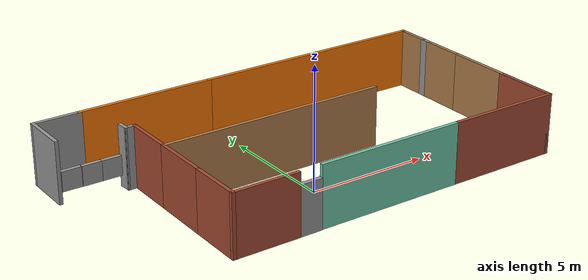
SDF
<?xml version='1.0'?>
<sdf version='1.6'>
  <model name='built'>
    <pose frame=''>0.68 1.96 0 0 -0 0</pose>
    <link name='Door_0'>
      <collision name='Door_0_Collision'>
        <geometry>
          <box>
            <size>0.9 0.17 2</size>
          </box>
        </geometry>
        <pose frame=''>0 0 1 0 -0 0</pose>
      </collision>
      <visual name='Door_0_Visual'>
        <pose frame=''>0 0 1 0 -0 0</pose>
        <geometry>
          <box>
            <size>0.9 0.17 2</size>
          </box>
        </geometry>
        <material>
          <script>
            <uri>file://media/materials/scripts/gazebo.material</uri>
            <name>Gazebo/Grey</name>
          </script>
        </material>
      </visual>
      <pose frame=''>-2.57 -4.37 0 0 -0 0</pose>
    </link>
    <link name='Wall_0'>
      <collision name='Wall_0_Collision'>
        <geometry>
          <box>
            <size>6.25 0.15 2.5</size>
          </box>
        </geometry>
        <pose frame=''>0 0 1.25 0 -0 0</pose>
      </collision>
      <visual name='Wall_0_Visual'>
        <pose frame=''>0 0 1.25 0 -0 0</pose>
        <geometry>
          <box>
            <size>6.25 0.15 2.5</size>
          </box>
        </geometry>
        <material>
          <script>
            <uri>file://media/materials/scripts/gazebo.material</uri>
            <name>Gazebo/Grey</name>
          </script>
          <ambient>0.435294 0.796078 0.67451 1</ambient>
        </material>
        <meta>
          <layer>0</layer>
        </meta>
      </visual>
      <pose frame=''>1 -4.36 0 0 -0 0</pose>
    </link>
    <link name='Wall_11'>
      <collision name='Wall_11_Collision'>
        <geometry>
          <box>
            <size>2.75 0.15 2.5</size>
          </box>
        </geometry>
        <pose frame=''>0 0 1.25 0 -0 0</pose>
      </collision>
      <visual name='Wall_11_Visual'>
        <pose frame=''>0 0 1.25 0 -0 0</pose>
        <geometry>
          <box>
            <size>2.75 0.15 2.5</size>
          </box>
        </geometry>
        <material>
          <script>
            <uri>file://media/materials/scripts/gazebo.material</uri>
            <name>Gazebo/Bricks</name>
          </script>
          <ambient>1 1 1 1</ambient>
        </material>
        <meta>
          <layer>0</layer>
        </meta>
      </visual>
      <pose frame=''>8.65 -3.06 0 0 -0 1.5708</pose>
    </link>
    <link name='Wall_13'>
      <collision name='Wall_13_Collision'>
        <geometry>
          <box>
            <size>2.75 0.15 2.5</size>
          </box>
        </geometry>
        <pose frame=''>0 0 1.25 0 -0 0</pose>
      </collision>
      <visual name='Wall_13_Visual'>
        <pose frame=''>0 0 1.25 0 -0 0</pose>
        <geometry>
          <box>
            <size>2.75 0.15 2.5</size>
          </box>
        </geometry>
        <material>
          <script>
            <uri>file://media/materials/scripts/gazebo.material</uri>
            <name>Gazebo/Wood</name>
          </script>
          <ambient>1 1 1 1</ambient>
        </material>
        <meta>
          <layer>0</layer>
        </meta>
      </visual>
      <pose frame=''>8.65 -0.46 0 0 -0 1.5708</pose>
    </link>
    <link name='Wall_15'>
      <collision name='Wall_15_Collision'>
        <geometry>
          <box>
            <size>2 0.15 2.5</size>
          </box>
        </geometry>
        <pose frame=''>0 0 1.25 0 -0 0</pose>
      </collision>
      <visual name='Wall_15_Visual'>
        <pose frame=''>0 0 1.25 0 -0 0</pose>
        <geometry>
          <box>
            <size>2 0.15 2.5</size>
          </box>
        </geometry>
        <material>
          <script>
            <uri>file://media/materials/scripts/gazebo.material</uri>
            <name>Gazebo/Wood</name>
          </script>
          <ambient>1 1 1 1</ambient>
        </material>
        <meta>
          <layer>0</layer>
        </meta>
      </visual>
      <pose frame=''>8.65 1.765 0 0 -0 1.5708</pose>
    </link>
    <link name='Wall_16'>
      <collision name='Wall_16_Collision'>
        <geometry>
          <box>
            <size>0.5 0.15 2.5</size>
          </box>
        </geometry>
        <pose frame=''>0 0 1.25 0 -0 0</pose>
      </collision>
      <visual name='Wall_16_Visual'>
        <pose frame=''>0 0 1.25 0 -0 0</pose>
        <geometry>
          <box>
            <size>0.5 0.15 2.5</size>
          </box>
        </geometry>
        <material>
          <script>
            <uri>file://media/materials/scripts/gazebo.material</uri>
            <name>Gazebo/Grey</name>
          </script>
          <ambient>1 1 1 1</ambient>
        </material>
        <meta>
          <layer>0</layer>
        </meta>
      </visual>
      <pose frame=''>8.65 2.865 0 0 -0 1.5708</pose>
    </link>
    <link name='Wall_18'>
      <collision name='Wall_18_Collision'>
        <geometry>
          <box>
            <size>1.5 0.15 2.5</size>
          </box>
        </geometry>
        <pose frame=''>0 0 1.25 0 -0 0</pose>
      </collision>
      <visual name='Wall_18_Visual'>
        <pose frame=''>0 0 1.25 0 -0 0</pose>
        <geometry>
          <box>
            <size>1.5 0.15 2.5</size>
          </box>
        </geometry>
        <material>
          <script>
            <uri>file://media/materials/scripts/gazebo.material</uri>
            <name>Gazebo/Wood</name>
          </script>
          <ambient>1 1 1 1</ambient>
        </material>
        <meta>
          <layer>0</layer>
        </meta>
      </visual>
      <pose frame=''>8.65 3.715 0 0 -0 1.5708</pose>
    </link>
    <link name='Wall_19'>
      <collision name='Wall_19_Collision'>
        <geometry>
          <box>
            <size>10 0.15 2.5</size>
          </box>
        </geometry>
        <pose frame=''>0 0 1.25 0 -0 0</pose>
      </collision>
      <visual name='Wall_19_Visual'>
        <pose frame=''>0 0 1.25 0 -0 0</pose>
        <geometry>
          <box>
            <size>10 0.15 2.5</size>
          </box>
        </geometry>
        <material>
          <script>
            <uri>file://media/materials/scripts/gazebo.material</uri>
            <name>Gazebo/Grey</name>
          </script>
          <ambient>0.996078 0.47451 0.0196078 1</ambient>
        </material>
        <meta>
          <layer>0</layer>
        </meta>
      </visual>
      <pose frame=''>3.725 4.39 0 0 -0 3.14159</pose>
    </link>
    <link name='Wall_2'>
      <collision name='Wall_2_Collision'>
        <geometry>
          <box>
            <size>2.75 0.15 2.5</size>
          </box>
        </geometry>
        <pose frame=''>0 0 1.25 0 -0 0</pose>
      </collision>
      <visual name='Wall_2_Visual'>
        <pose frame=''>0 0 1.25 0 -0 0</pose>
        <geometry>
          <box>
            <size>2.75 0.15 2.5</size>
          </box>
        </geometry>
        <material>
          <script>
            <uri>file://media/materials/scripts/gazebo.material</uri>
            <name>Gazebo/Bricks</name>
          </script>
          <ambient>1 1 1 1</ambient>
        </material>
        <meta>
          <layer>0</layer>
        </meta>
      </visual>
      <pose frame=''>-4.41 -4.39 0 0 -0 3.14159</pose>
    </link>
    <link name='Wall_22'>
      <collision name='Wall_22_Collision'>
        <geometry>
          <box>
            <size>5.75 0.15 2.5</size>
          </box>
        </geometry>
        <pose frame=''>0 0 1.25 0 -0 0</pose>
      </collision>
      <visual name='Wall_22_Visual'>
        <pose frame=''>0 0 1.25 0 -0 0</pose>
        <geometry>
          <box>
            <size>5.75 0.15 2.5</size>
          </box>
        </geometry>
        <material>
          <script>
            <uri>file://media/materials/scripts/gazebo.material</uri>
            <name>Gazebo/Grey</name>
          </script>
          <ambient>0.996078 0.47451 0.0196078 1</ambient>
        </material>
        <meta>
          <layer>0</layer>
        </meta>
      </visual>
      <pose frame=''>-4 4.39 0 0 -0 3.14159</pose>
    </link>
    <link name='Wall_24'>
      <collision name='Wall_24_Collision'>
        <geometry>
          <box>
            <size>2 0.15 2.5</size>
          </box>
        </geometry>
        <pose frame=''>0 0 1.25 0 -0 0</pose>
      </collision>
      <visual name='Wall_24_Visual'>
        <pose frame=''>0 0 1.25 0 -0 0</pose>
        <geometry>
          <box>
            <size>2 0.15 2.5</size>
          </box>
        </geometry>
        <material>
          <script>
            <uri>file://media/materials/scripts/gazebo.material</uri>
            <name>Gazebo/Grey</name>
          </script>
          <ambient>1 1 1 1</ambient>
        </material>
        <meta>
          <layer>0</layer>
        </meta>
      </visual>
      <pose frame=''>-7.725 4.39 0 0 -0 3.14159</pose>
    </link>
    <link name='Wall_25'>
      <collision name='Wall_25_Collision'>
        <geometry>
          <box>
            <size>2 0.15 2.5</size>
          </box>
        </geometry>
        <pose frame=''>0 0 1.25 0 -0 0</pose>
      </collision>
      <visual name='Wall_25_Visual'>
        <pose frame=''>0 0 1.25 0 -0 0</pose>
        <geometry>
          <box>
            <size>2 0.15 2.5</size>
          </box>
        </geometry>
        <material>
          <script>
            <uri>file://media/materials/scripts/gazebo.material</uri>
            <name>Gazebo/Grey</name>
          </script>
          <ambient>1 1 1 1</ambient>
        </material>
        <meta>
          <layer>0</layer>
        </meta>
      </visual>
      <pose frame=''>-8.65 3.465 0 0 0 -1.5708</pose>
    </link>
    <link name='Wall_27'>
      <collision name='Wall_27_Collision'>
        <geometry>
          <box>
            <size>2.25 0.15 2.5</size>
          </box>
        </geometry>
        <pose frame=''>0 0 1.25 0 -0 0</pose>
      </collision>
      <visual name='Wall_27_Visual'>
        <pose frame=''>0 0 1.25 0 -0 0</pose>
        <geometry>
          <box>
            <size>2.25 0.15 2.5</size>
          </box>
        </geometry>
        <material>
          <script>
            <uri>file://media/materials/scripts/gazebo.material</uri>
            <name>Gazebo/Bricks</name>
          </script>
          <ambient>1 1 1 1</ambient>
        </material>
        <meta>
          <layer>0</layer>
        </meta>
      </visual>
      <pose frame=''>-5.71 1.11 0 0 -0 1.5708</pose>
    </link>
    <link name='Wall_28'>
      <collision name='Wall_28_Collision'>
        <geometry>
          <box>
            <size>0.5 0.15 2.5</size>
          </box>
        </geometry>
        <pose frame=''>0 0 1.25 0 -0 0</pose>
      </collision>
      <visual name='Wall_28_Visual'>
        <pose frame=''>0 0 1.25 0 -0 0</pose>
        <geometry>
          <box>
            <size>0.5 0.15 2.5</size>
          </box>
        </geometry>
        <material>
          <script>
            <uri>file://media/materials/scripts/gazebo.material</uri>
            <name>Gazebo/Grey</name>
          </script>
          <ambient>1 1 1 1</ambient>
        </material>
        <meta>
          <layer>0</layer>
        </meta>
      </visual>
      <pose frame=''>-5.885 2.16 0 0 -0 3.14159</pose>
    </link>
    <link name='Wall_30'>
      <collision name='Wall_30_Collision'>
        <geometry>
          <box>
            <size>0.511248 0.15 2.5</size>
          </box>
        </geometry>
        <pose frame=''>0 0 1.25 0 -0 0</pose>
      </collision>
      <visual name='Wall_30_Visual'>
        <pose frame=''>0 0 1.25 0 -0 0</pose>
        <geometry>
          <box>
            <size>0.511248 0.15 2.5</size>
          </box>
        </geometry>
        <material>
          <script>
            <uri>file://media/materials/scripts/gazebo.material</uri>
            <name>Gazebo/Grey</name>
          </script>
          <ambient>1 1 1 1</ambient>
        </material>
        <meta>
          <layer>0</layer>
        </meta>
      </visual>
      <pose frame=''>-6.075 2.34 0 0 0 -1.48765</pose>
    </link>
    <link name='Wall_4'>
      <collision name='Wall_4_Collision'>
        <geometry>
          <box>
            <size>2.25 0.15 2.5</size>
          </box>
        </geometry>
        <pose frame=''>0 0 1.25 0 -0 0</pose>
      </collision>
      <visual name='Wall_4_Visual'>
        <pose frame=''>0 0 1.25 0 -0 0</pose>
        <geometry>
          <box>
            <size>2.25 0.15 2.5</size>
          </box>
        </geometry>
        <material>
          <script>
            <uri>file://media/materials/scripts/gazebo.material</uri>
            <name>Gazebo/Bricks</name>
          </script>
          <ambient>1 1 1 1</ambient>
        </material>
        <meta>
          <layer>0</layer>
        </meta>
      </visual>
      <pose frame=''>-5.71 -3.34 0 0 -0 1.5708</pose>
    </link>
    <link name='Wall_6'>
      <collision name='Wall_6_Collision'>
        <geometry>
          <box>
            <size>2.5 0.15 2.5</size>
          </box>
        </geometry>
        <pose frame=''>0 0 1.25 0 -0 0</pose>
      </collision>
      <visual name='Wall_6_Visual'>
        <pose frame=''>0 0 1.25 0 -0 0</pose>
        <geometry>
          <box>
            <size>2.5 0.15 2.5</size>
          </box>
        </geometry>
        <material>
          <script>
            <uri>file://media/materials/scripts/gazebo.material</uri>
            <name>Gazebo/Bricks</name>
          </script>
          <ambient>1 1 1 1</ambient>
        </material>
        <meta>
          <layer>0</layer>
        </meta>
      </visual>
      <pose frame=''>-5.71 -1.115 0 0 -0 1.5708</pose>
    </link>
    <link name='Wall_7'>
      <collision name='Wall_7_Collision'>
        <geometry>
          <box>
            <size>9.5 0.15 2.5</size>
          </box>
        </geometry>
        <pose frame=''>0 0 1.25 0 -0 0</pose>
      </collision>
      <visual name='Wall_7_Visual'>
        <pose frame=''>0 0 1.25 0 -0 0</pose>
        <geometry>
          <box>
            <size>9.5 0.15 2.5</size>
          </box>
        </geometry>
        <material>
          <script>
            <uri>file://media/materials/scripts/gazebo.material</uri>
            <name>Gazebo/Wood</name>
          </script>
          <ambient>1 1 1 1</ambient>
        </material>
        <meta>
          <layer>0</layer>
        </meta>
      </visual>
      <pose frame=''>-1.035 0.06 0 0 -0 0</pose>
    </link>
    <link name='Wall_9'>
      <collision name='Wall_9_Collision'>
        <geometry>
          <box>
            <size>4.75 0.15 2.5</size>
          </box>
        </geometry>
        <pose frame=''>0 0 1.25 0 -0 0</pose>
      </collision>
      <visual name='Wall_9_Visual'>
        <pose frame=''>0 0 1.25 0 -0 0</pose>
        <geometry>
          <box>
            <size>4.75 0.15 2.5</size>
          </box>
        </geometry>
        <material>
          <script>
            <uri>file://media/materials/scripts/gazebo.material</uri>
            <name>Gazebo/Bricks</name>
          </script>
          <ambient>1 1 1 1</ambient>
        </material>
        <meta>
          <layer>0</layer>
        </meta>
      </visual>
      <pose frame=''>6.35 -4.36 0 0 -0 0</pose>
    </link>
    <link name='Window_0'>
      <collision name='Window_0_Collision'>
        <geometry>
          <box>
            <size>0.8 0.17 0.8</size>
          </box>
        </geometry>
        <pose frame=''>0 0 0.4 0 -0 0</pose>
      </collision>
      <visual name='Window_0_Visual'>
        <pose frame=''>0 0 0.4 0 -0 0</pose>
        <geometry>
          <box>
            <size>0.8 0.17 0.8</size>
          </box>
        </geometry>
        <material>
          <script>
            <uri>file://media/materials/scripts/gazebo.material</uri>
            <name>Gazebo/Grey</name>
          </script>
        </material>
      </visual>
      <pose frame=''>-8.18 2.51 0.5 0 -0 0</pose>
    </link>
    <link name='Window_1'>
      <collision name='Window_1_Collision'>
        <geometry>
          <box>
            <size>0.8 0.17 0.8</size>
          </box>
        </geometry>
        <pose frame=''>0 0 0.4 0 -0 0</pose>
      </collision>
      <visual name='Window_1_Visual'>
        <pose frame=''>0 0 0.4 0 -0 0</pose>
        <geometry>
          <box>
            <size>0.8 0.17 0.8</size>
          </box>
        </geometry>
        <material>
          <script>
            <uri>file://media/materials/scripts/gazebo.material</uri>
            <name>Gazebo/Grey</name>
          </script>
        </material>
      </visual>
      <pose frame=''>-7.37 2.5 0.5 0 -0 0</pose>
    </link>
    <link name='Window_2'>
      <collision name='Window_2_Collision'>
        <geometry>
          <box>
            <size>0.8 0.17 0.8</size>
          </box>
        </geometry>
        <pose frame=''>0 0 0.4 0 -0 0</pose>
      </collision>
      <visual name='Window_2_Visual'>
        <pose frame=''>0 0 0.4 0 -0 0</pose>
        <geometry>
          <box>
            <size>0.8 0.17 0.8</size>
          </box>
        </geometry>
        <material>
          <script>
            <uri>file://media/materials/scripts/gazebo.material</uri>
            <name>Gazebo/Grey</name>
          </script>
        </material>
      </visual>
      <pose frame=''>-6.57 2.5 0.5 0 -0 0</pose>
    </link>
    <static>1</static>
  </model>
</sdf>
